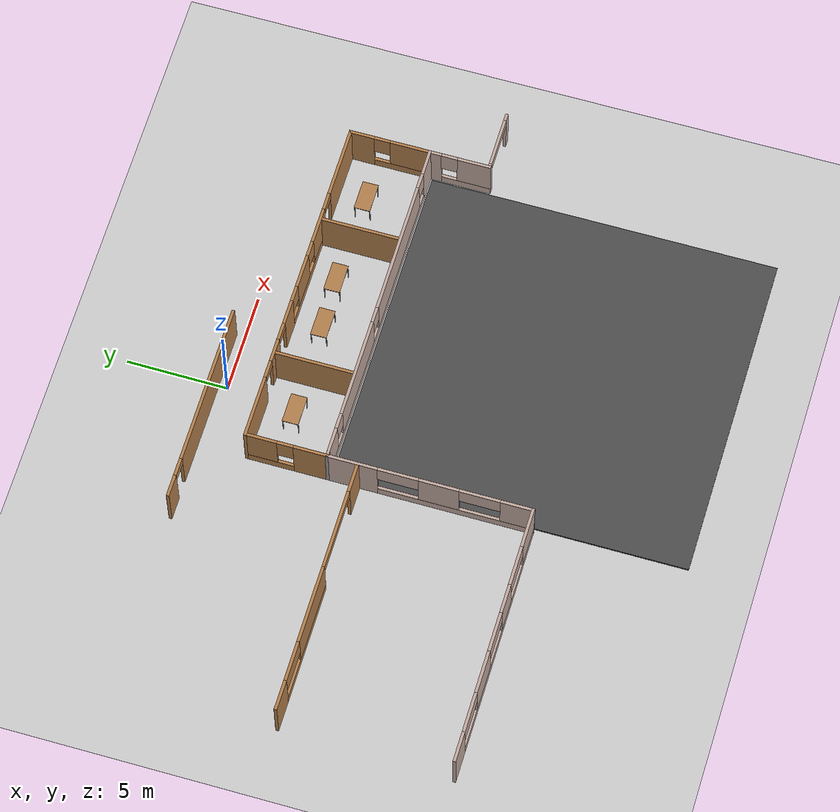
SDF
<sdf version="1.7">
 <world name="default">
  <model name="ground_plane">
   <static>1</static>
   <link name="link">
    <collision name="collision">
     <geometry><plane><normal>0 0 1</normal><size>100 100</size></plane></geometry>
     <surface>
      <contact><collide_bitmask>65535</collide_bitmask></contact>
      <friction><ode><mu>100</mu><mu2>50</mu2></ode></friction>
     </surface>
    </collision>
    <visual name="visual">
     <cast_shadows>0</cast_shadows>
     <geometry><plane><normal>0 0 1</normal><size>100 100</size></plane></geometry>
     <material>
      <script><uri>file://media/materials/scripts/gazebo.material</uri><name>Gazebo/Grey</name></script>
     </material>
    </visual>
   </link>
  </model>
  <model name="Office">
   <pose>0.30406 -0.9941 0 0 -0 0</pose>
   <link name="Wall_0">
    <pose>-10 -15 0 0 -0 0</pose>
    <visual name="Wall_0_Visual_0">
     <pose>-5.81535 0 1.25 0 -0 0</pose>
     <geometry><box><size>1.51931 0.15 2.5</size></box></geometry>
     <material>
      <script><uri>file://media/materials/scripts/gazebo.material</uri><name>Gazebo/Grey</name></script>
      <ambient>0.760784 0.662745 0.627451 1</ambient>
     </material>
     <meta><layer>0</layer></meta>
    </visual>
    <collision name="Wall_0_Collision_0">
     <geometry><box><size>1.51931 0.15 2.5</size></box></geometry>
     <pose>-5.81535 0 1.25 0 -0 0</pose>
    </collision>
    <visual name="Wall_0_Visual_1">
     <pose>0.759654 0 0.25 0 -0 0</pose>
     <geometry><box><size>11.6307 0.15 0.5</size></box></geometry>
     <material>
      <script><uri>file://media/materials/scripts/gazebo.material</uri><name>Gazebo/Grey</name></script>
      <ambient>0.760784 0.662745 0.627451 1</ambient>
     </material>
     <meta><layer>0</layer></meta>
    </visual>
    <collision name="Wall_0_Collision_1">
     <geometry><box><size>11.6307 0.15 0.5</size></box></geometry>
     <pose>0.759654 0 0.25 0 -0 0</pose>
    </collision>
    <visual name="Wall_0_Visual_2">
     <pose>-1.98547 0 1.5 0 -0 0</pose>
     <geometry><box><size>2.14044 0.15 2</size></box></geometry>
     <material>
      <script><uri>file://media/materials/scripts/gazebo.material</uri><name>Gazebo/Grey</name></script>
      <ambient>0.760784 0.662745 0.627451 1</ambient>
     </material>
     <meta><layer>0</layer></meta>
    </visual>
    <collision name="Wall_0_Collision_2">
     <geometry><box><size>2.14044 0.15 2</size></box></geometry>
     <pose>-1.98547 0 1.5 0 -0 0</pose>
    </collision>
    <visual name="Wall_0_Visual_3">
     <pose>1.82008 0 1.5 0 -0 0</pose>
     <geometry><box><size>1.47066 0.15 2</size></box></geometry>
     <material>
      <script><uri>file://media/materials/scripts/gazebo.material</uri><name>Gazebo/Grey</name></script>
      <ambient>0.760784 0.662745 0.627451 1</ambient>
     </material>
     <meta><layer>0</layer></meta>
    </visual>
    <collision name="Wall_0_Collision_3">
     <geometry><box><size>1.47066 0.15 2</size></box></geometry>
     <pose>1.82008 0 1.5 0 -0 0</pose>
    </collision>
    <visual name="Wall_0_Visual_4">
     <pose>5.56521 0 1.5 0 -0 0</pose>
     <geometry><box><size>2.01958 0.15 2</size></box></geometry>
     <material>
      <script><uri>file://media/materials/scripts/gazebo.material</uri><name>Gazebo/Grey</name></script>
      <ambient>0.760784 0.662745 0.627451 1</ambient>
     </material>
     <meta><layer>0</layer></meta>
    </visual>
    <collision name="Wall_0_Collision_4">
     <geometry><box><size>2.01958 0.15 2</size></box></geometry>
     <pose>5.56521 0 1.5 0 -0 0</pose>
    </collision>
    <visual name="Wall_0_Visual_5">
     <pose>-4.05569 0 2 0 -0 0</pose>
     <geometry><box><size>2 0.15 1</size></box></geometry>
     <material>
      <script><uri>file://media/materials/scripts/gazebo.material</uri><name>Gazebo/Grey</name></script>
      <ambient>0.760784 0.662745 0.627451 1</ambient>
     </material>
     <meta><layer>0</layer></meta>
    </visual>
    <collision name="Wall_0_Collision_5">
     <geometry><box><size>2 0.15 1</size></box></geometry>
     <pose>-4.05569 0 2 0 -0 0</pose>
    </collision>
    <visual name="Wall_0_Visual_6">
     <pose>0.084752 0 2 0 -0 0</pose>
     <geometry><box><size>2 0.15 1</size></box></geometry>
     <material>
      <script><uri>file://media/materials/scripts/gazebo.material</uri><name>Gazebo/Grey</name></script>
      <ambient>0.760784 0.662745 0.627451 1</ambient>
     </material>
     <meta><layer>0</layer></meta>
    </visual>
    <collision name="Wall_0_Collision_6">
     <geometry><box><size>2 0.15 1</size></box></geometry>
     <pose>0.084752 0 2 0 -0 0</pose>
    </collision>
    <visual name="Wall_0_Visual_7">
     <pose>3.55542 0 2 0 -0 0</pose>
     <geometry><box><size>2 0.15 1</size></box></geometry>
     <material>
      <script><uri>file://media/materials/scripts/gazebo.material</uri><name>Gazebo/Grey</name></script>
      <ambient>0.760784 0.662745 0.627451 1</ambient>
     </material>
     <meta><layer>0</layer></meta>
    </visual>
    <collision name="Wall_0_Collision_7">
     <geometry><box><size>2 0.15 1</size></box></geometry>
     <pose>3.55542 0 2 0 -0 0</pose>
    </collision>
   </link>
   <link name="Wall_22">
    <pose>5 -5 0 0 -0 3.14159</pose>
    <visual name="Wall_22_Visual_0">
     <pose>-7.90117 0 1.25 0 -0 0</pose>
     <geometry><box><size>1.34767 0.15 2.5</size></box></geometry>
     <material>
      <script><uri>file://media/materials/scripts/gazebo.material</uri><name>Gazebo/Grey</name></script>
      <ambient>0.760784 0.662745 0.627451 1</ambient>
     </material>
     <meta><layer>0</layer></meta>
    </visual>
    <collision name="Wall_22_Collision_0">
     <geometry><box><size>1.34767 0.15 2.5</size></box></geometry>
     <pose>-7.90117 0 1.25 0 -0 0</pose>
    </collision>
    <visual name="Wall_22_Visual_1">
     <pose>0.673833 0 0.25 0 -0 0</pose>
     <geometry><box><size>15.8023 0.15 0.5</size></box></geometry>
     <material>
      <script><uri>file://media/materials/scripts/gazebo.material</uri><name>Gazebo/Grey</name></script>
      <ambient>0.760784 0.662745 0.627451 1</ambient>
     </material>
     <meta><layer>0</layer></meta>
    </visual>
    <collision name="Wall_22_Collision_1">
     <geometry><box><size>15.8023 0.15 0.5</size></box></geometry>
     <pose>0.673833 0 0.25 0 -0 0</pose>
    </collision>
    <visual name="Wall_22_Visual_2">
     <pose>-3.02957 0 1.5 0 -0 0</pose>
     <geometry><box><size>6.79553 0.15 2</size></box></geometry>
     <material>
      <script><uri>file://media/materials/scripts/gazebo.material</uri><name>Gazebo/Grey</name></script>
      <ambient>0.760784 0.662745 0.627451 1</ambient>
     </material>
     <meta><layer>0</layer></meta>
    </visual>
    <collision name="Wall_22_Collision_2">
     <geometry><box><size>6.79553 0.15 2</size></box></geometry>
     <pose>-3.02957 0 1.5 0 -0 0</pose>
    </collision>
    <visual name="Wall_22_Visual_3">
     <pose>3.69491 0 1.5 0 -0 0</pose>
     <geometry><box><size>5.05343 0.15 2</size></box></geometry>
     <material>
      <script><uri>file://media/materials/scripts/gazebo.material</uri><name>Gazebo/Grey</name></script>
      <ambient>0.760784 0.662745 0.627451 1</ambient>
     </material>
     <meta><layer>0</layer></meta>
    </visual>
    <collision name="Wall_22_Collision_3">
     <geometry><box><size>5.05343 0.15 2</size></box></geometry>
     <pose>3.69491 0 1.5 0 -0 0</pose>
    </collision>
    <visual name="Wall_22_Visual_4">
     <pose>7.79831 0 1.5 0 -0 0</pose>
     <geometry><box><size>1.55337 0.15 2</size></box></geometry>
     <material>
      <script><uri>file://media/materials/scripts/gazebo.material</uri><name>Gazebo/Grey</name></script>
      <ambient>0.760784 0.662745 0.627451 1</ambient>
     </material>
     <meta><layer>0</layer></meta>
    </visual>
    <collision name="Wall_22_Collision_4">
     <geometry><box><size>1.55337 0.15 2</size></box></geometry>
     <pose>7.79831 0 1.5 0 -0 0</pose>
    </collision>
    <visual name="Wall_22_Visual_5">
     <pose>-6.82733 0 1.9 0 -0 0</pose>
     <geometry><box><size>0.8 0.15 1.2</size></box></geometry>
     <material>
      <script><uri>file://media/materials/scripts/gazebo.material</uri><name>Gazebo/Grey</name></script>
      <ambient>0.760784 0.662745 0.627451 1</ambient>
     </material>
     <meta><layer>0</layer></meta>
    </visual>
    <collision name="Wall_22_Collision_5">
     <geometry><box><size>0.8 0.15 1.2</size></box></geometry>
     <pose>-6.82733 0 1.9 0 -0 0</pose>
    </collision>
    <visual name="Wall_22_Visual_6">
     <pose>0.768194 0 1.9 0 -0 0</pose>
     <geometry><box><size>0.8 0.15 1.2</size></box></geometry>
     <material>
      <script><uri>file://media/materials/scripts/gazebo.material</uri><name>Gazebo/Grey</name></script>
      <ambient>0.760784 0.662745 0.627451 1</ambient>
     </material>
     <meta><layer>0</layer></meta>
    </visual>
    <collision name="Wall_22_Collision_6">
     <geometry><box><size>0.8 0.15 1.2</size></box></geometry>
     <pose>0.768194 0 1.9 0 -0 0</pose>
    </collision>
    <visual name="Wall_22_Visual_7">
     <pose>6.62163 0 1.9 0 -0 0</pose>
     <geometry><box><size>0.8 0.15 1.2</size></box></geometry>
     <material>
      <script><uri>file://media/materials/scripts/gazebo.material</uri><name>Gazebo/Grey</name></script>
      <ambient>0.760784 0.662745 0.627451 1</ambient>
     </material>
     <meta><layer>0</layer></meta>
    </visual>
    <collision name="Wall_22_Collision_7">
     <geometry><box><size>0.8 0.15 1.2</size></box></geometry>
     <pose>6.62163 0 1.9 0 -0 0</pose>
    </collision>
   </link>
   <link name="Wall_24">
    <collision name="Wall_24_Collision">
     <geometry><box><size>3.85 0.15 2.5</size></box></geometry>
     <pose>0 0 1.25 0 -0 0</pose>
    </collision>
    <visual name="Wall_24_Visual">
     <pose>0 0 1.25 0 -0 0</pose>
     <geometry><box><size>3.85 0.15 2.5</size></box></geometry>
     <material>
      <script><uri>file://media/materials/scripts/gazebo.material</uri><name>Gazebo/Wood</name></script>
      <ambient>1 1 1 1</ambient>
     </material>
     <meta><layer>0</layer></meta>
    </visual>
    <pose>8.5 -3 0 0 -0 -1.5708</pose>
   </link>
   <link name="Wall_26">
    <collision name="Wall_26_Collision">
     <geometry><box><size>3.85 0.15 2.5</size></box></geometry>
     <pose>0 0 1.25 0 -0 0</pose>
    </collision>
    <visual name="Wall_26_Visual">
     <pose>0 0 1.25 0 -0 0</pose>
     <geometry><box><size>3.85 0.15 2.5</size></box></geometry>
     <material>
      <script><uri>file://media/materials/scripts/gazebo.material</uri><name>Gazebo/Wood</name></script>
      <ambient>1 1 1 1</ambient>
     </material>
     <meta><layer>0</layer></meta>
    </visual>
    <pose>1 -3 0 0 -0 -1.5708</pose>
   </link>
   <link name="Wall_33">
    <pose>-2.5 1.5 0 0 -0 3.14159</pose>
    <visual name="Wall_33_Visual_0">
     <pose>-1.0046 0 1.25 0 -0 0</pose>
     <geometry><box><size>8.1408 0.15 2.5</size></box></geometry>
     <material>
      <script><uri>file://media/materials/scripts/gazebo.material</uri><name>Gazebo/Wood</name></script>
      <ambient>1 1 1 1</ambient>
     </material>
     <meta><layer>0</layer></meta>
    </visual>
    <collision name="Wall_33_Collision_0">
     <geometry><box><size>8.1408 0.15 2.5</size></box></geometry>
     <pose>-1.0046 0 1.25 0 -0 0</pose>
    </collision>
    <visual name="Wall_33_Visual_1">
     <pose>4.5204 0 1.25 0 -0 0</pose>
     <geometry><box><size>1.1092 0.15 2.5</size></box></geometry>
     <material>
      <script><uri>file://media/materials/scripts/gazebo.material</uri><name>Gazebo/Wood</name></script>
      <ambient>1 1 1 1</ambient>
     </material>
     <meta><layer>0</layer></meta>
    </visual>
    <collision name="Wall_33_Collision_1">
     <geometry><box><size>1.1092 0.15 2.5</size></box></geometry>
     <pose>4.5204 0 1.25 0 -0 0</pose>
    </collision>
    <visual name="Wall_33_Visual_2">
     <pose>3.5158 0 2.25 0 -0 0</pose>
     <geometry><box><size>0.9 0.15 0.5</size></box></geometry>
     <material>
      <script><uri>file://media/materials/scripts/gazebo.material</uri><name>Gazebo/Wood</name></script>
      <ambient>1 1 1 1</ambient>
     </material>
     <meta><layer>0</layer></meta>
    </visual>
    <collision name="Wall_33_Collision_2">
     <geometry><box><size>0.9 0.15 0.5</size></box></geometry>
     <pose>3.5158 0 2.25 0 -0 0</pose>
    </collision>
   </link>
   <link name="Wall_49">
    <pose>-10 -6.5 0 0 -0 0</pose>
    <visual name="Wall_49_Visual_0">
     <pose>-5.674 0 1.25 0 -0 0</pose>
     <geometry><box><size>1.502 0.15 2.5</size></box></geometry>
     <material>
      <script><uri>file://media/materials/scripts/gazebo.material</uri><name>Gazebo/Wood</name></script>
      <ambient>1 1 1 1</ambient>
     </material>
     <meta><layer>0</layer></meta>
    </visual>
    <collision name="Wall_49_Collision_0">
     <geometry><box><size>1.502 0.15 2.5</size></box></geometry>
     <pose>-5.674 0 1.25 0 -0 0</pose>
    </collision>
    <visual name="Wall_49_Visual_1">
     <pose>5.7125 0 1.25 0 -0 0</pose>
     <geometry><box><size>1.425 0.15 2.5</size></box></geometry>
     <material>
      <script><uri>file://media/materials/scripts/gazebo.material</uri><name>Gazebo/Wood</name></script>
      <ambient>1 1 1 1</ambient>
     </material>
     <meta><layer>0</layer></meta>
    </visual>
    <collision name="Wall_49_Collision_1">
     <geometry><box><size>1.425 0.15 2.5</size></box></geometry>
     <pose>5.7125 0 1.25 0 -0 0</pose>
    </collision>
    <visual name="Wall_49_Visual_2">
     <pose>-1.9615 0 0.25 0 -0 0</pose>
     <geometry><box><size>5.923 0.15 0.5</size></box></geometry>
     <material>
      <script><uri>file://media/materials/scripts/gazebo.material</uri><name>Gazebo/Wood</name></script>
      <ambient>1 1 1 1</ambient>
     </material>
     <meta><layer>0</layer></meta>
    </visual>
    <collision name="Wall_49_Collision_2">
     <geometry><box><size>5.923 0.15 0.5</size></box></geometry>
     <pose>-1.9615 0 0.25 0 -0 0</pose>
    </collision>
    <visual name="Wall_49_Visual_3">
     <pose>-0.9615 0 1.5 0 -0 0</pose>
     <geometry><box><size>3.923 0.15 2</size></box></geometry>
     <material>
      <script><uri>file://media/materials/scripts/gazebo.material</uri><name>Gazebo/Wood</name></script>
      <ambient>1 1 1 1</ambient>
     </material>
     <meta><layer>0</layer></meta>
    </visual>
    <collision name="Wall_49_Collision_3">
     <geometry><box><size>3.923 0.15 2</size></box></geometry>
     <pose>-0.9615 0 1.5 0 -0 0</pose>
    </collision>
    <visual name="Wall_49_Visual_4">
     <pose>-3.923 0 1.9 0 -0 0</pose>
     <geometry><box><size>2 0.15 1.2</size></box></geometry>
     <material>
      <script><uri>file://media/materials/scripts/gazebo.material</uri><name>Gazebo/Wood</name></script>
      <ambient>1 1 1 1</ambient>
     </material>
     <meta><layer>0</layer></meta>
    </visual>
    <collision name="Wall_49_Collision_4">
     <geometry><box><size>2 0.15 1.2</size></box></geometry>
     <pose>-3.923 0 1.9 0 -0 0</pose>
    </collision>
    <visual name="Wall_49_Visual_5">
     <pose>3 0 2.25 0 -0 0</pose>
     <geometry><box><size>4 0.15 0.5</size></box></geometry>
     <material>
      <script><uri>file://media/materials/scripts/gazebo.material</uri><name>Gazebo/Wood</name></script>
      <ambient>1 1 1 1</ambient>
     </material>
     <meta><layer>0</layer></meta>
    </visual>
    <collision name="Wall_49_Collision_5">
     <geometry><box><size>4 0.15 0.5</size></box></geometry>
     <pose>3 0 2.25 0 -0 0</pose>
    </collision>
   </link>
   <link name="Wall_55">
    <collision name="Wall_55_Collision">
     <geometry><box><size>0.3 0.15 2.5</size></box></geometry>
     <pose>0 0 1.25 0 -0 0</pose>
    </collision>
    <visual name="Wall_55_Visual">
     <pose>0 0 1.25 0 -0 0</pose>
     <geometry><box><size>0.3 0.15 2.5</size></box></geometry>
     <material>
      <script><uri>file://media/materials/scripts/gazebo.material</uri><name>Gazebo/Grey</name></script>
      <ambient>1 1 1 1</ambient>
     </material>
     <meta><layer>0</layer></meta>
    </visual>
    <pose>-3.425 -5 0 0 -0 0</pose>
   </link>
   <link name="Wall_57">
    <pose>-3.5 -10 0 0 -0 -1.5708</pose>
    <visual name="Wall_57_Visual_0">
     <pose>-3.80921 0 1.25 0 -0 0</pose>
     <geometry><box><size>2.53158 0.15 2.5</size></box></geometry>
     <material>
      <script><uri>file://media/materials/scripts/gazebo.material</uri><name>Gazebo/Grey</name></script>
      <ambient>0.760784 0.662745 0.627451 1</ambient>
     </material>
     <meta><layer>0</layer></meta>
    </visual>
    <collision name="Wall_57_Collision_0">
     <geometry><box><size>2.53158 0.15 2.5</size></box></geometry>
     <pose>-3.80921 0 1.25 0 -0 0</pose>
    </collision>
    <visual name="Wall_57_Visual_1">
     <pose>1.26579 0 0.25 0 -0 0</pose>
     <geometry><box><size>7.61842 0.15 0.5</size></box></geometry>
     <material>
      <script><uri>file://media/materials/scripts/gazebo.material</uri><name>Gazebo/Grey</name></script>
      <ambient>0.760784 0.662745 0.627451 1</ambient>
     </material>
     <meta><layer>0</layer></meta>
    </visual>
    <collision name="Wall_57_Collision_1">
     <geometry><box><size>7.61842 0.15 0.5</size></box></geometry>
     <pose>1.26579 0 0.25 0 -0 0</pose>
    </collision>
    <visual name="Wall_57_Visual_2">
     <pose>0.441489 0 1.5 0 -0 0</pose>
     <geometry><box><size>1.96982 0.15 2</size></box></geometry>
     <material>
      <script><uri>file://media/materials/scripts/gazebo.material</uri><name>Gazebo/Grey</name></script>
      <ambient>0.760784 0.662745 0.627451 1</ambient>
     </material>
     <meta><layer>0</layer></meta>
    </visual>
    <collision name="Wall_57_Collision_2">
     <geometry><box><size>1.96982 0.15 2</size></box></geometry>
     <pose>0.441489 0 1.5 0 -0 0</pose>
    </collision>
    <visual name="Wall_57_Visual_3">
     <pose>4.2507 0 1.5 0 -0 0</pose>
     <geometry><box><size>1.6486 0.15 2</size></box></geometry>
     <material>
      <script><uri>file://media/materials/scripts/gazebo.material</uri><name>Gazebo/Grey</name></script>
      <ambient>0.760784 0.662745 0.627451 1</ambient>
     </material>
     <meta><layer>0</layer></meta>
    </visual>
    <collision name="Wall_57_Collision_3">
     <geometry><box><size>1.6486 0.15 2</size></box></geometry>
     <pose>4.2507 0 1.5 0 -0 0</pose>
    </collision>
    <visual name="Wall_57_Visual_4">
     <pose>-1.54342 0 2 0 -0 0</pose>
     <geometry><box><size>2 0.15 1</size></box></geometry>
     <material>
      <script><uri>file://media/materials/scripts/gazebo.material</uri><name>Gazebo/Grey</name></script>
      <ambient>0.760784 0.662745 0.627451 1</ambient>
     </material>
     <meta><layer>0</layer></meta>
    </visual>
    <collision name="Wall_57_Collision_4">
     <geometry><box><size>2 0.15 1</size></box></geometry>
     <pose>-1.54342 0 2 0 -0 0</pose>
    </collision>
    <visual name="Wall_57_Visual_5">
     <pose>2.4264 0 2 0 -0 0</pose>
     <geometry><box><size>2 0.15 1</size></box></geometry>
     <material>
      <script><uri>file://media/materials/scripts/gazebo.material</uri><name>Gazebo/Grey</name></script>
      <ambient>0.760784 0.662745 0.627451 1</ambient>
     </material>
     <meta><layer>0</layer></meta>
    </visual>
    <collision name="Wall_57_Collision_5">
     <geometry><box><size>2 0.15 1</size></box></geometry>
     <pose>2.4264 0 2 0 -0 0</pose>
    </collision>
   </link>
   <link name="Wall_59">
    <pose>-3.5 -3.075 0 0 -0 1.5708</pose>
    <visual name="Wall_59_Visual_0">
     <pose>-1.13753 0 1.25 0 -0 0</pose>
     <geometry><box><size>1.72495 0.15 2.5</size></box></geometry>
     <material>
      <script><uri>file://media/materials/scripts/gazebo.material</uri><name>Gazebo/Wood</name></script>
      <ambient>1 1 1 1</ambient>
     </material>
     <meta><layer>0</layer></meta>
    </visual>
    <collision name="Wall_59_Collision_0">
     <geometry><box><size>1.72495 0.15 2.5</size></box></geometry>
     <pose>-1.13753 0 1.25 0 -0 0</pose>
    </collision>
    <visual name="Wall_59_Visual_1">
     <pose>0.862474 0 0.25 0 -0 0</pose>
     <geometry><box><size>2.27505 0.15 0.5</size></box></geometry>
     <material>
      <script><uri>file://media/materials/scripts/gazebo.material</uri><name>Gazebo/Wood</name></script>
      <ambient>1 1 1 1</ambient>
     </material>
     <meta><layer>0</layer></meta>
    </visual>
    <collision name="Wall_59_Collision_1">
     <geometry><box><size>2.27505 0.15 0.5</size></box></geometry>
     <pose>0.862474 0 0.25 0 -0 0</pose>
    </collision>
    <visual name="Wall_59_Visual_2">
     <pose>1.26247 0 1.5 0 -0 0</pose>
     <geometry><box><size>1.47505 0.15 2</size></box></geometry>
     <material>
      <script><uri>file://media/materials/scripts/gazebo.material</uri><name>Gazebo/Wood</name></script>
      <ambient>1 1 1 1</ambient>
     </material>
     <meta><layer>0</layer></meta>
    </visual>
    <collision name="Wall_59_Collision_2">
     <geometry><box><size>1.47505 0.15 2</size></box></geometry>
     <pose>1.26247 0 1.5 0 -0 0</pose>
    </collision>
    <visual name="Wall_59_Visual_3">
     <pose>0.124948 0 1.9 0 -0 0</pose>
     <geometry><box><size>0.8 0.15 1.2</size></box></geometry>
     <material>
      <script><uri>file://media/materials/scripts/gazebo.material</uri><name>Gazebo/Wood</name></script>
      <ambient>1 1 1 1</ambient>
     </material>
     <meta><layer>0</layer></meta>
    </visual>
    <collision name="Wall_59_Collision_3">
     <geometry><box><size>0.8 0.15 1.2</size></box></geometry>
     <pose>0.124948 0 1.9 0 -0 0</pose>
    </collision>
   </link>
   <link name="Wall_61">
    <pose>13.5 -3 0 0 -0 -1.5708</pose>
    <visual name="Wall_61_Visual_0">
     <pose>-1.43374 0 1.25 0 -0 0</pose>
     <geometry><box><size>1.28252 0.15 2.5</size></box></geometry>
     <material>
      <script><uri>file://media/materials/scripts/gazebo.material</uri><name>Gazebo/Wood</name></script>
      <ambient>1 1 1 1</ambient>
     </material>
     <meta><layer>0</layer></meta>
    </visual>
    <collision name="Wall_61_Collision_0">
     <geometry><box><size>1.28252 0.15 2.5</size></box></geometry>
     <pose>-1.43374 0 1.25 0 -0 0</pose>
    </collision>
    <visual name="Wall_61_Visual_1">
     <pose>0.64126 0 0.25 0 -0 0</pose>
     <geometry><box><size>2.86748 0.15 0.5</size></box></geometry>
     <material>
      <script><uri>file://media/materials/scripts/gazebo.material</uri><name>Gazebo/Wood</name></script>
      <ambient>1 1 1 1</ambient>
     </material>
     <meta><layer>0</layer></meta>
    </visual>
    <collision name="Wall_61_Collision_1">
     <geometry><box><size>2.86748 0.15 0.5</size></box></geometry>
     <pose>0.64126 0 0.25 0 -0 0</pose>
    </collision>
    <visual name="Wall_61_Visual_2">
     <pose>1.04126 0 1.5 0 -0 0</pose>
     <geometry><box><size>2.06748 0.15 2</size></box></geometry>
     <material>
      <script><uri>file://media/materials/scripts/gazebo.material</uri><name>Gazebo/Wood</name></script>
      <ambient>1 1 1 1</ambient>
     </material>
     <meta><layer>0</layer></meta>
    </visual>
    <collision name="Wall_61_Collision_2">
     <geometry><box><size>2.06748 0.15 2</size></box></geometry>
     <pose>1.04126 0 1.5 0 -0 0</pose>
    </collision>
    <visual name="Wall_61_Visual_3">
     <pose>-0.39248 0 1.9 0 -0 0</pose>
     <geometry><box><size>0.8 0.15 1.2</size></box></geometry>
     <material>
      <script><uri>file://media/materials/scripts/gazebo.material</uri><name>Gazebo/Wood</name></script>
      <ambient>1 1 1 1</ambient>
     </material>
     <meta><layer>0</layer></meta>
    </visual>
    <collision name="Wall_61_Collision_3">
     <geometry><box><size>0.8 0.15 1.2</size></box></geometry>
     <pose>-0.39248 0 1.9 0 -0 0</pose>
    </collision>
   </link>
   <link name="Wall_62">
    <pose>13.5 -6.5 0 0 -0 -1.5708</pose>
    <visual name="Wall_62_Visual_0">
     <pose>-1.2392 0 1.25 0 -0 0</pose>
     <geometry><box><size>0.671599 0.15 2.5</size></box></geometry>
     <material>
      <script><uri>file://media/materials/scripts/gazebo.material</uri><name>Gazebo/Grey</name></script>
      <ambient>0.760784 0.662745 0.627451 1</ambient>
     </material>
     <meta><layer>0</layer></meta>
    </visual>
    <collision name="Wall_62_Collision_0">
     <geometry><box><size>0.671599 0.15 2.5</size></box></geometry>
     <pose>-1.2392 0 1.25 0 -0 0</pose>
    </collision>
    <visual name="Wall_62_Visual_1">
     <pose>0.335799 0 0.25 0 -0 0</pose>
     <geometry><box><size>2.4784 0.15 0.5</size></box></geometry>
     <material>
      <script><uri>file://media/materials/scripts/gazebo.material</uri><name>Gazebo/Grey</name></script>
      <ambient>0.760784 0.662745 0.627451 1</ambient>
     </material>
     <meta><layer>0</layer></meta>
    </visual>
    <collision name="Wall_62_Collision_1">
     <geometry><box><size>2.4784 0.15 0.5</size></box></geometry>
     <pose>0.335799 0 0.25 0 -0 0</pose>
    </collision>
    <visual name="Wall_62_Visual_2">
     <pose>0.735799 0 1.5 0 -0 0</pose>
     <geometry><box><size>1.6784 0.15 2</size></box></geometry>
     <material>
      <script><uri>file://media/materials/scripts/gazebo.material</uri><name>Gazebo/Grey</name></script>
      <ambient>0.760784 0.662745 0.627451 1</ambient>
     </material>
     <meta><layer>0</layer></meta>
    </visual>
    <collision name="Wall_62_Collision_2">
     <geometry><box><size>1.6784 0.15 2</size></box></geometry>
     <pose>0.735799 0 1.5 0 -0 0</pose>
    </collision>
    <visual name="Wall_62_Visual_3">
     <pose>-0.503401 0 1.9 0 -0 0</pose>
     <geometry><box><size>0.8 0.15 1.2</size></box></geometry>
     <material>
      <script><uri>file://media/materials/scripts/gazebo.material</uri><name>Gazebo/Grey</name></script>
      <ambient>0.760784 0.662745 0.627451 1</ambient>
     </material>
     <meta><layer>0</layer></meta>
    </visual>
    <collision name="Wall_62_Collision_3">
     <geometry><box><size>0.8 0.15 1.2</size></box></geometry>
     <pose>-0.503401 0 1.9 0 -0 0</pose>
    </collision>
   </link>
   <link name="Wall_7">
    <pose>5 -1 0 0 -0 0</pose>
    <visual name="Wall_7_Visual_0">
     <pose>-6.98847 0 1.25 0 -0 0</pose>
     <geometry><box><size>3.17307 0.15 2.5</size></box></geometry>
     <material>
      <script><uri>file://media/materials/scripts/gazebo.material</uri><name>Gazebo/Wood</name></script>
      <ambient>1 1 1 1</ambient>
     </material>
     <meta><layer>0</layer></meta>
    </visual>
    <collision name="Wall_7_Collision_0">
     <geometry><box><size>3.17307 0.15 2.5</size></box></geometry>
     <pose>-6.98847 0 1.25 0 -0 0</pose>
    </collision>
    <visual name="Wall_7_Visual_1">
     <pose>-3.9039 0 1.25 0 -0 0</pose>
     <geometry><box><size>1.19606 0.15 2.5</size></box></geometry>
     <material>
      <script><uri>file://media/materials/scripts/gazebo.material</uri><name>Gazebo/Wood</name></script>
      <ambient>1 1 1 1</ambient>
     </material>
     <meta><layer>0</layer></meta>
    </visual>
    <collision name="Wall_7_Collision_1">
     <geometry><box><size>1.19606 0.15 2.5</size></box></geometry>
     <pose>-3.9039 0 1.25 0 -0 0</pose>
    </collision>
    <visual name="Wall_7_Visual_2">
     <pose>-1.78025 0 1.25 0 -0 0</pose>
     <geometry><box><size>1.25124 0.15 2.5</size></box></geometry>
     <material>
      <script><uri>file://media/materials/scripts/gazebo.material</uri><name>Gazebo/Wood</name></script>
      <ambient>1 1 1 1</ambient>
     </material>
     <meta><layer>0</layer></meta>
    </visual>
    <collision name="Wall_7_Collision_2">
     <geometry><box><size>1.25124 0.15 2.5</size></box></geometry>
     <pose>-1.78025 0 1.25 0 -0 0</pose>
    </collision>
    <visual name="Wall_7_Visual_3">
     <pose>6.75273 0 1.25 0 -0 0</pose>
     <geometry><box><size>3.64454 0.15 2.5</size></box></geometry>
     <material>
      <script><uri>file://media/materials/scripts/gazebo.material</uri><name>Gazebo/Wood</name></script>
      <ambient>1 1 1 1</ambient>
     </material>
     <meta><layer>0</layer></meta>
    </visual>
    <collision name="Wall_7_Collision_3">
     <geometry><box><size>3.64454 0.15 2.5</size></box></geometry>
     <pose>6.75273 0 1.25 0 -0 0</pose>
    </collision>
    <visual name="Wall_7_Visual_4">
     <pose>1.43791 0 0.25 0 -0 0</pose>
     <geometry><box><size>5.1851 0.15 0.5</size></box></geometry>
     <material>
      <script><uri>file://media/materials/scripts/gazebo.material</uri><name>Gazebo/Wood</name></script>
      <ambient>1 1 1 1</ambient>
     </material>
     <meta><layer>0</layer></meta>
    </visual>
    <collision name="Wall_7_Collision_4">
     <geometry><box><size>5.1851 0.15 0.5</size></box></geometry>
     <pose>1.43791 0 0.25 0 -0 0</pose>
    </collision>
    <visual name="Wall_7_Visual_5">
     <pose>0.511762 0 1.5 0 -0 0</pose>
     <geometry><box><size>1.7328 0.15 2</size></box></geometry>
     <material>
      <script><uri>file://media/materials/scripts/gazebo.material</uri><name>Gazebo/Wood</name></script>
      <ambient>1 1 1 1</ambient>
     </material>
     <meta><layer>0</layer></meta>
    </visual>
    <collision name="Wall_7_Collision_5">
     <geometry><box><size>1.7328 0.15 2</size></box></geometry>
     <pose>0.511762 0 1.5 0 -0 0</pose>
    </collision>
    <visual name="Wall_7_Visual_6">
     <pose>3.10431 0 1.5 0 -0 0</pose>
     <geometry><box><size>1.8523 0.15 2</size></box></geometry>
     <material>
      <script><uri>file://media/materials/scripts/gazebo.material</uri><name>Gazebo/Wood</name></script>
      <ambient>1 1 1 1</ambient>
     </material>
     <meta><layer>0</layer></meta>
    </visual>
    <collision name="Wall_7_Collision_6">
     <geometry><box><size>1.8523 0.15 2</size></box></geometry>
     <pose>3.10431 0 1.5 0 -0 0</pose>
    </collision>
    <visual name="Wall_7_Visual_7">
     <pose>-0.754637 0 1.9 0 -0 0</pose>
     <geometry><box><size>0.8 0.15 1.2</size></box></geometry>
     <material>
      <script><uri>file://media/materials/scripts/gazebo.material</uri><name>Gazebo/Wood</name></script>
      <ambient>1 1 1 1</ambient>
     </material>
     <meta><layer>0</layer></meta>
    </visual>
    <collision name="Wall_7_Collision_7">
     <geometry><box><size>0.8 0.15 1.2</size></box></geometry>
     <pose>-0.754637 0 1.9 0 -0 0</pose>
    </collision>
    <visual name="Wall_7_Visual_8">
     <pose>1.77816 0 1.9 0 -0 0</pose>
     <geometry><box><size>0.8 0.15 1.2</size></box></geometry>
     <material>
      <script><uri>file://media/materials/scripts/gazebo.material</uri><name>Gazebo/Wood</name></script>
      <ambient>1 1 1 1</ambient>
     </material>
     <meta><layer>0</layer></meta>
    </visual>
    <collision name="Wall_7_Collision_8">
     <geometry><box><size>0.8 0.15 1.2</size></box></geometry>
     <pose>1.77816 0 1.9 0 -0 0</pose>
    </collision>
    <visual name="Wall_7_Visual_9">
     <pose>-4.95193 0 2.25 0 -0 0</pose>
     <geometry><box><size>0.9 0.15 0.5</size></box></geometry>
     <material>
      <script><uri>file://media/materials/scripts/gazebo.material</uri><name>Gazebo/Wood</name></script>
      <ambient>1 1 1 1</ambient>
     </material>
     <meta><layer>0</layer></meta>
    </visual>
    <collision name="Wall_7_Collision_9">
     <geometry><box><size>0.9 0.15 0.5</size></box></geometry>
     <pose>-4.95193 0 2.25 0 -0 0</pose>
    </collision>
    <visual name="Wall_7_Visual_10">
     <pose>-2.85587 0 2.25 0 -0 0</pose>
     <geometry><box><size>0.9 0.15 0.5</size></box></geometry>
     <material>
      <script><uri>file://media/materials/scripts/gazebo.material</uri><name>Gazebo/Wood</name></script>
      <ambient>1 1 1 1</ambient>
     </material>
     <meta><layer>0</layer></meta>
    </visual>
    <collision name="Wall_7_Collision_10">
     <geometry><box><size>0.9 0.15 0.5</size></box></geometry>
     <pose>-2.85587 0 2.25 0 -0 0</pose>
    </collision>
    <visual name="Wall_7_Visual_11">
     <pose>4.48046 0 2.25 0 -0 0</pose>
     <geometry><box><size>0.9 0.15 0.5</size></box></geometry>
     <material>
      <script><uri>file://media/materials/scripts/gazebo.material</uri><name>Gazebo/Wood</name></script>
      <ambient>1 1 1 1</ambient>
     </material>
     <meta><layer>0</layer></meta>
    </visual>
    <collision name="Wall_7_Collision_11">
     <geometry><box><size>0.9 0.15 0.5</size></box></geometry>
     <pose>4.48046 0 2.25 0 -0 0</pose>
    </collision>
   </link>
   <link name="Wall_9">
    <pose>15 -8 0 0 -0 0</pose>
    <visual name="Wall_9_Visual_0">
     <pose>-1.43986 0 1.25 0 -0 0</pose>
     <geometry><box><size>0.270274 0.15 2.5</size></box></geometry>
     <material>
      <script><uri>file://media/materials/scripts/gazebo.material</uri><name>Gazebo/Grey</name></script>
      <ambient>0.760784 0.662745 0.627451 1</ambient>
     </material>
     <meta><layer>0</layer></meta>
    </visual>
    <collision name="Wall_9_Collision_0">
     <geometry><box><size>0.270274 0.15 2.5</size></box></geometry>
     <pose>-1.43986 0 1.25 0 -0 0</pose>
    </collision>
    <visual name="Wall_9_Visual_1">
     <pose>1.38514 0 1.25 0 -0 0</pose>
     <geometry><box><size>0.379726 0.15 2.5</size></box></geometry>
     <material>
      <script><uri>file://media/materials/scripts/gazebo.material</uri><name>Gazebo/Grey</name></script>
      <ambient>0.760784 0.662745 0.627451 1</ambient>
     </material>
     <meta><layer>0</layer></meta>
    </visual>
    <collision name="Wall_9_Collision_1">
     <geometry><box><size>0.379726 0.15 2.5</size></box></geometry>
     <pose>1.38514 0 1.25 0 -0 0</pose>
    </collision>
    <visual name="Wall_9_Visual_2">
     <pose>-0.054726 0 2.25 0 -0 0</pose>
     <geometry><box><size>2.5 0.15 0.5</size></box></geometry>
     <material>
      <script><uri>file://media/materials/scripts/gazebo.material</uri><name>Gazebo/Grey</name></script>
      <ambient>0.760784 0.662745 0.627451 1</ambient>
     </material>
     <meta><layer>0</layer></meta>
    </visual>
    <collision name="Wall_9_Collision_2">
     <geometry><box><size>2.5 0.15 0.5</size></box></geometry>
     <pose>-0.054726 0 2.25 0 -0 0</pose>
    </collision>
   </link>
   <static>1</static>
  </model>
  <model name="asphalt_plane">
   <static>1</static>
   <link name="link">
    <collision name="collision"><geometry><box><size>16.6553 17.3976 0.1</size></box></geometry></collision>
    <visual name="visual">
     <cast_shadows>0</cast_shadows>
     <geometry><box><size>16.6553 17.3976 0.1</size></box></geometry>
     <material>
      <script>
       <uri>model://asphalt_plane/materials/scripts</uri>
       <uri>model://asphalt_plane/materials/textures</uri>
       <name>vrc/asphalt</name>
      </script>
     </material>
    </visual>
   </link>
   <pose>5.32516 -14.8382 0 0 -0 0</pose>
  </model>
  <model name="table">
   <static>1</static>
   <link name="link">
    <collision name="surface">
     <pose>0 0 1 0 -0 0</pose>
     <geometry><box><size>1.5 0.8 0.03</size></box></geometry>
     <surface><friction><ode><mu>0.6</mu><mu2>0.6</mu2></ode></friction></surface>
    </collision>
    <visual name="visual1">
     <pose>0 0 1 0 -0 0</pose>
     <geometry><box><size>1.5 0.8 0.03</size></box></geometry>
     <material>
      <script><uri>file://media/materials/scripts/gazebo.material</uri><name>Gazebo/Wood</name></script>
     </material>
    </visual>
    <collision name="front_left_leg">
     <pose>0.68 0.38 0.5 0 -0 0</pose>
     <geometry><cylinder><radius>0.02</radius><length>1</length></cylinder></geometry>
    </collision>
    <visual name="front_left_legv">
     <pose>0.68 0.38 0.5 0 -0 0</pose>
     <geometry><cylinder><radius>0.02</radius><length>1</length></cylinder></geometry>
     <material>
      <script><uri>file://media/materials/scripts/gazebo.material</uri><name>Gazebo/Grey</name></script>
     </material>
    </visual>
    <collision name="front_right_leg">
     <pose>0.68 -0.38 0.5 0 -0 0</pose>
     <geometry><cylinder><radius>0.02</radius><length>1</length></cylinder></geometry>
    </collision>
    <visual name="front_right_legv">
     <pose>0.68 -0.38 0.5 0 -0 0</pose>
     <geometry><cylinder><radius>0.02</radius><length>1</length></cylinder></geometry>
     <material>
      <script><uri>file://media/materials/scripts/gazebo.material</uri><name>Gazebo/Grey</name></script>
     </material>
    </visual>
    <collision name="back_right_leg">
     <pose>-0.68 -0.38 0.5 0 -0 0</pose>
     <geometry><cylinder><radius>0.02</radius><length>1</length></cylinder></geometry>
    </collision>
    <visual name="back_right_legv">
     <pose>-0.68 -0.38 0.5 0 -0 0</pose>
     <geometry><cylinder><radius>0.02</radius><length>1</length></cylinder></geometry>
     <material>
      <script><uri>file://media/materials/scripts/gazebo.material</uri><name>Gazebo/Grey</name></script>
     </material>
    </visual>
    <collision name="back_left_leg">
     <pose>-0.68 0.38 0.5 0 -0 0</pose>
     <geometry><cylinder><radius>0.02</radius><length>1</length></cylinder></geometry>
    </collision>
    <visual name="back_left_legv">
     <pose>-0.68 0.38 0.5 0 -0 0</pose>
     <geometry><cylinder><radius>0.02</radius><length>1</length></cylinder></geometry>
     <material>
      <script><uri>file://media/materials/scripts/gazebo.material</uri><name>Gazebo/Grey</name></script>
     </material>
    </visual>
   </link>
   <pose>-0.619914 -3.57409 0 0 -0 0</pose>
  </model>
  <model name="table_clone">
   <static>1</static>
   <link name="link">
    <collision name="surface">
     <pose>0 0 1 0 -0 0</pose>
     <geometry><box><size>1.5 0.8 0.03</size></box></geometry>
     <surface><friction><ode><mu>0.6</mu><mu2>0.6</mu2></ode></friction></surface>
    </collision>
    <visual name="visual1">
     <pose>0 0 1 0 -0 0</pose>
     <geometry><box><size>1.5 0.8 0.03</size></box></geometry>
     <material>
      <script><uri>file://media/materials/scripts/gazebo.material</uri><name>Gazebo/Wood</name></script>
     </material>
    </visual>
    <collision name="front_left_leg">
     <pose>0.68 0.38 0.5 0 -0 0</pose>
     <geometry><cylinder><radius>0.02</radius><length>1</length></cylinder></geometry>
    </collision>
    <visual name="front_left_legv">
     <pose>0.68 0.38 0.5 0 -0 0</pose>
     <geometry><cylinder><radius>0.02</radius><length>1</length></cylinder></geometry>
     <material>
      <script><uri>file://media/materials/scripts/gazebo.material</uri><name>Gazebo/Grey</name></script>
     </material>
    </visual>
    <collision name="front_right_leg">
     <pose>0.68 -0.38 0.5 0 -0 0</pose>
     <geometry><cylinder><radius>0.02</radius><length>1</length></cylinder></geometry>
    </collision>
    <visual name="front_right_legv">
     <pose>0.68 -0.38 0.5 0 -0 0</pose>
     <geometry><cylinder><radius>0.02</radius><length>1</length></cylinder></geometry>
     <material>
      <script><uri>file://media/materials/scripts/gazebo.material</uri><name>Gazebo/Grey</name></script>
     </material>
    </visual>
    <collision name="back_right_leg">
     <pose>-0.68 -0.38 0.5 0 -0 0</pose>
     <geometry><cylinder><radius>0.02</radius><length>1</length></cylinder></geometry>
    </collision>
    <visual name="back_right_legv">
     <pose>-0.68 -0.38 0.5 0 -0 0</pose>
     <geometry><cylinder><radius>0.02</radius><length>1</length></cylinder></geometry>
     <material>
      <script><uri>file://media/materials/scripts/gazebo.material</uri><name>Gazebo/Grey</name></script>
     </material>
    </visual>
    <collision name="back_left_leg">
     <pose>-0.68 0.38 0.5 0 -0 0</pose>
     <geometry><cylinder><radius>0.02</radius><length>1</length></cylinder></geometry>
    </collision>
    <visual name="back_left_legv">
     <pose>-0.68 0.38 0.5 0 -0 0</pose>
     <geometry><cylinder><radius>0.02</radius><length>1</length></cylinder></geometry>
     <material>
      <script><uri>file://media/materials/scripts/gazebo.material</uri><name>Gazebo/Grey</name></script>
     </material>
    </visual>
   </link>
   <pose>4.1735 -3.50009 0 0 -0 0</pose>
  </model>
  <model name="table_clone_0">
   <static>1</static>
   <link name="link">
    <collision name="surface">
     <pose>0 0 1 0 -0 0</pose>
     <geometry><box><size>1.5 0.8 0.03</size></box></geometry>
     <surface><friction><ode><mu>0.6</mu><mu2>0.6</mu2></ode></friction></surface>
    </collision>
    <visual name="visual1">
     <pose>0 0 1 0 -0 0</pose>
     <geometry><box><size>1.5 0.8 0.03</size></box></geometry>
     <material>
      <script><uri>file://media/materials/scripts/gazebo.material</uri><name>Gazebo/Wood</name></script>
     </material>
    </visual>
    <collision name="front_left_leg">
     <pose>0.68 0.38 0.5 0 -0 0</pose>
     <geometry><cylinder><radius>0.02</radius><length>1</length></cylinder></geometry>
    </collision>
    <visual name="front_left_legv">
     <pose>0.68 0.38 0.5 0 -0 0</pose>
     <geometry><cylinder><radius>0.02</radius><length>1</length></cylinder></geometry>
     <material>
      <script><uri>file://media/materials/scripts/gazebo.material</uri><name>Gazebo/Grey</name></script>
     </material>
    </visual>
    <collision name="front_right_leg">
     <pose>0.68 -0.38 0.5 0 -0 0</pose>
     <geometry><cylinder><radius>0.02</radius><length>1</length></cylinder></geometry>
    </collision>
    <visual name="front_right_legv">
     <pose>0.68 -0.38 0.5 0 -0 0</pose>
     <geometry><cylinder><radius>0.02</radius><length>1</length></cylinder></geometry>
     <material>
      <script><uri>file://media/materials/scripts/gazebo.material</uri><name>Gazebo/Grey</name></script>
     </material>
    </visual>
    <collision name="back_right_leg">
     <pose>-0.68 -0.38 0.5 0 -0 0</pose>
     <geometry><cylinder><radius>0.02</radius><length>1</length></cylinder></geometry>
    </collision>
    <visual name="back_right_legv">
     <pose>-0.68 -0.38 0.5 0 -0 0</pose>
     <geometry><cylinder><radius>0.02</radius><length>1</length></cylinder></geometry>
     <material>
      <script><uri>file://media/materials/scripts/gazebo.material</uri><name>Gazebo/Grey</name></script>
     </material>
    </visual>
    <collision name="back_left_leg">
     <pose>-0.68 0.38 0.5 0 -0 0</pose>
     <geometry><cylinder><radius>0.02</radius><length>1</length></cylinder></geometry>
    </collision>
    <visual name="back_left_legv">
     <pose>-0.68 0.38 0.5 0 -0 0</pose>
     <geometry><cylinder><radius>0.02</radius><length>1</length></cylinder></geometry>
     <material>
      <script><uri>file://media/materials/scripts/gazebo.material</uri><name>Gazebo/Grey</name></script>
     </material>
    </visual>
   </link>
   <pose>6.69863 -3.39088 0 0 -0 0</pose>
  </model>
  <model name="table_clone_1">
   <static>1</static>
   <link name="link">
    <collision name="surface">
     <pose>0 0 1 0 -0 0</pose>
     <geometry><box><size>1.5 0.8 0.03</size></box></geometry>
     <surface><friction><ode><mu>0.6</mu><mu2>0.6</mu2></ode></friction></surface>
    </collision>
    <visual name="visual1">
     <pose>0 0 1 0 -0 0</pose>
     <geometry><box><size>1.5 0.8 0.03</size></box></geometry>
     <material>
      <script><uri>file://media/materials/scripts/gazebo.material</uri><name>Gazebo/Wood</name></script>
     </material>
    </visual>
    <collision name="front_left_leg">
     <pose>0.68 0.38 0.5 0 -0 0</pose>
     <geometry><cylinder><radius>0.02</radius><length>1</length></cylinder></geometry>
    </collision>
    <visual name="front_left_legv">
     <pose>0.68 0.38 0.5 0 -0 0</pose>
     <geometry><cylinder><radius>0.02</radius><length>1</length></cylinder></geometry>
     <material>
      <script><uri>file://media/materials/scripts/gazebo.material</uri><name>Gazebo/Grey</name></script>
     </material>
    </visual>
    <collision name="front_right_leg">
     <pose>0.68 -0.38 0.5 0 -0 0</pose>
     <geometry><cylinder><radius>0.02</radius><length>1</length></cylinder></geometry>
    </collision>
    <visual name="front_right_legv">
     <pose>0.68 -0.38 0.5 0 -0 0</pose>
     <geometry><cylinder><radius>0.02</radius><length>1</length></cylinder></geometry>
     <material>
      <script><uri>file://media/materials/scripts/gazebo.material</uri><name>Gazebo/Grey</name></script>
     </material>
    </visual>
    <collision name="back_right_leg">
     <pose>-0.68 -0.38 0.5 0 -0 0</pose>
     <geometry><cylinder><radius>0.02</radius><length>1</length></cylinder></geometry>
    </collision>
    <visual name="back_right_legv">
     <pose>-0.68 -0.38 0.5 0 -0 0</pose>
     <geometry><cylinder><radius>0.02</radius><length>1</length></cylinder></geometry>
     <material>
      <script><uri>file://media/materials/scripts/gazebo.material</uri><name>Gazebo/Grey</name></script>
     </material>
    </visual>
    <collision name="back_left_leg">
     <pose>-0.68 0.38 0.5 0 -0 0</pose>
     <geometry><cylinder><radius>0.02</radius><length>1</length></cylinder></geometry>
    </collision>
    <visual name="back_left_legv">
     <pose>-0.68 0.38 0.5 0 -0 0</pose>
     <geometry><cylinder><radius>0.02</radius><length>1</length></cylinder></geometry>
     <material>
      <script><uri>file://media/materials/scripts/gazebo.material</uri><name>Gazebo/Grey</name></script>
     </material>
    </visual>
   </link>
   <pose>11.3652 -3.49953 0 0 -0 0</pose>
  </model>
  <model name="worker">
   <static>1</static>
   <pose>8 0 -10 0 -0 0</pose>
   <link name="link">
    <collision name="link"><geometry><box><size>0.5 0.5 1</size></box></geometry></collision>
   </link>
  </model>
 </world>
</sdf>
